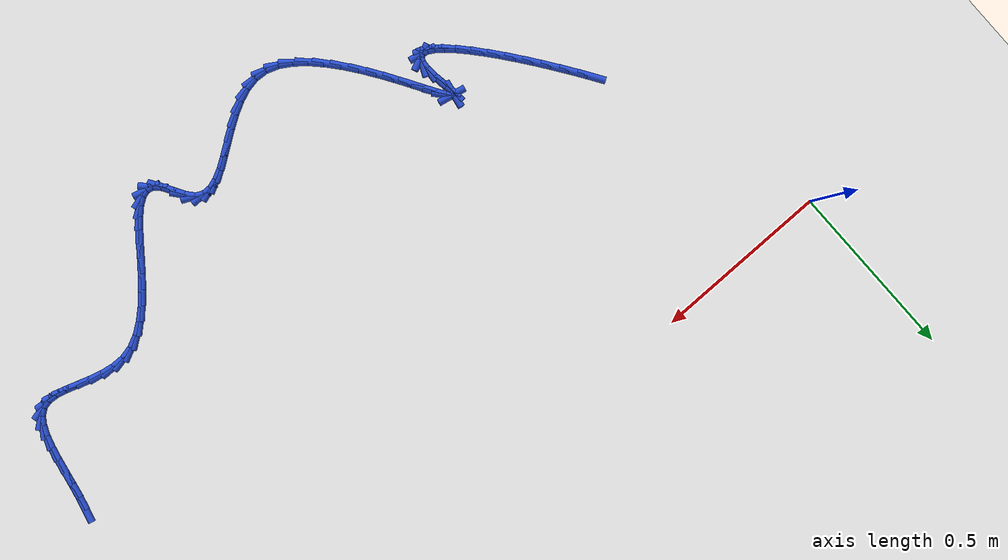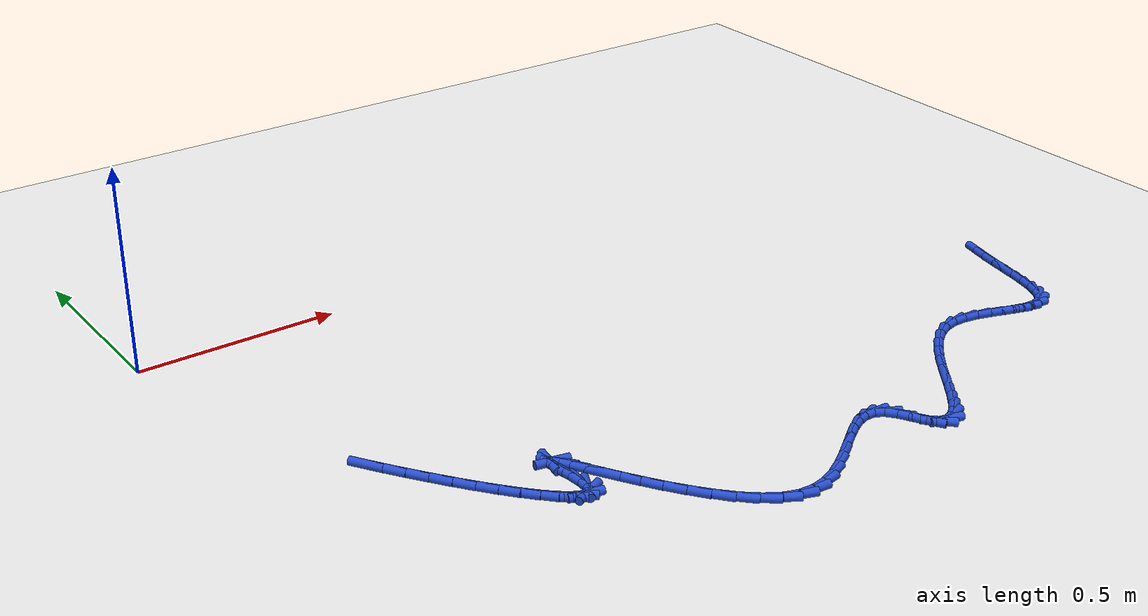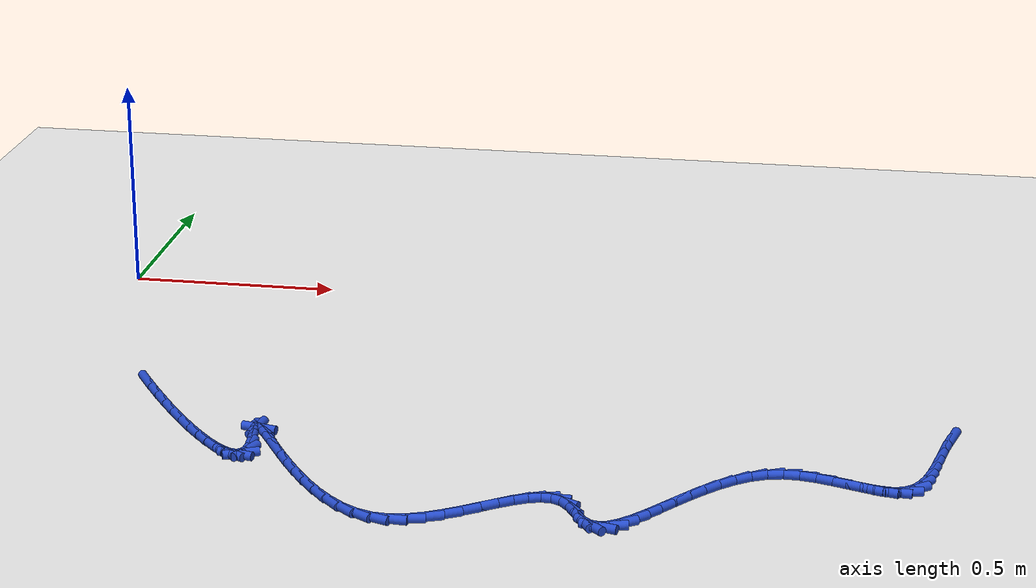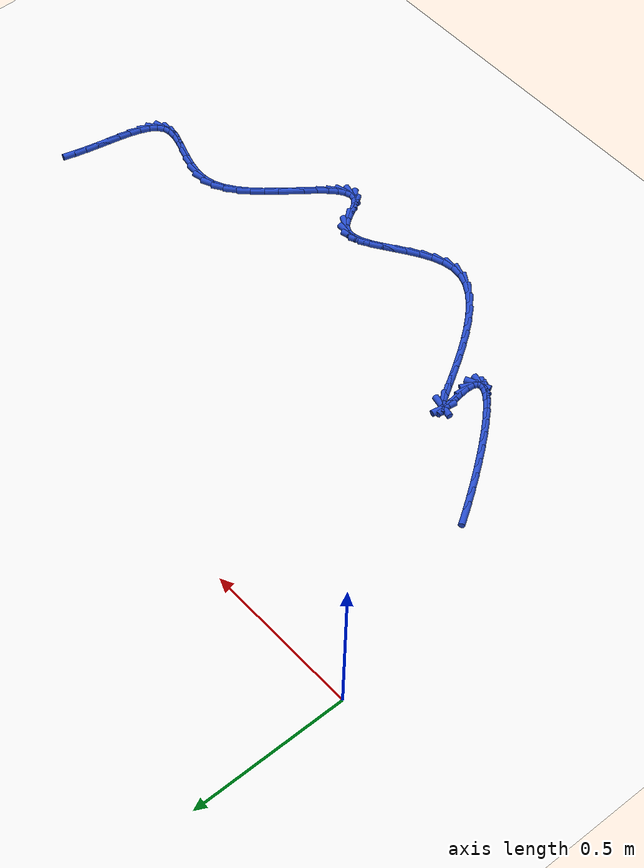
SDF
<sdf version="1.6">
 <world name="default">
  <model name="ground_plane">
   <static>1</static>
   <link name="link">
    <collision name="collision">
     <geometry><plane><normal>0 0 1</normal><size>100 100</size></plane></geometry>
     <surface><friction><ode><mu>100</mu><mu2>50</mu2></ode></friction></surface>
    </collision>
    <visual name="visual">
     <cast_shadows>0</cast_shadows>
     <geometry><plane><normal>0 0 1</normal><size>100 100</size></plane></geometry>
     <material>
      <script><uri>file://media/materials/scripts/gazebo.material</uri><name>Gazebo/WhiteGlow</name></script>
     </material>
    </visual>
   </link>
  </model>
  <model name="line">
   <link name="link_140">
    <pose>2.02241449339849 -0.6710309930264609 0.01 0 1.57 1.319415978468877</pose>
    <collision name="collision">
     <geometry><cylinder><radius>0.01</radius><length>0.08</length></cylinder></geometry>
    </collision>
    <visual name="visual">
     <material>
      <script><name>Gazebo/Blue</name><uri>file://media/materials/scripts/gazebo.material</uri></script>
     </material>
     <geometry><cylinder><radius>0.01</radius><length>0.08</length></cylinder></geometry>
    </visual>
   </link>
   <link name="link_141">
    <pose>2.0132947647723123 -0.7065421867468198 0.01 0 1.57 1.349553911798489</pose>
    <collision name="collision">
     <geometry><cylinder><radius>0.01</radius><length>0.08</length></cylinder></geometry>
    </collision>
    <visual name="visual">
     <material>
      <script><name>Gazebo/Blue</name><uri>file://media/materials/scripts/gazebo.material</uri></script>
     </material>
     <geometry><cylinder><radius>0.01</radius><length>0.08</length></cylinder></geometry>
    </visual>
   </link>
   <link name="link_142">
    <pose>2.0049523692283775 -0.7436319743968415 0.01 0 1.57 1.3719975886626592</pose>
    <collision name="collision">
     <geometry><cylinder><radius>0.01</radius><length>0.08</length></cylinder></geometry>
    </collision>
    <visual name="visual">
     <material>
      <script><name>Gazebo/Blue</name><uri>file://media/materials/scripts/gazebo.material</uri></script>
     </material>
     <geometry><cylinder><radius>0.01</radius><length>0.08</length></cylinder></geometry>
    </visual>
   </link>
   <link name="link_143">
    <pose>1.99726057973033 -0.7818122600142535 0.01 0 1.57 1.3697888168531898</pose>
    <collision name="collision">
     <geometry><cylinder><radius>0.01</radius><length>0.08</length></cylinder></geometry>
    </collision>
    <visual name="visual">
     <material>
      <script><name>Gazebo/Blue</name><uri>file://media/materials/scripts/gazebo.material</uri></script>
     </material>
     <geometry><cylinder><radius>0.01</radius><length>0.08</length></cylinder></geometry>
    </visual>
   </link>
   <link name="link_144">
    <pose>1.9895470251991547 -0.8196684944545303 0.01 0 1.57 1.340531421344994</pose>
    <collision name="collision">
     <geometry><cylinder><radius>0.01</radius><length>0.08</length></cylinder></geometry>
    </collision>
    <visual name="visual">
     <material>
      <script><name>Gazebo/Blue</name><uri>file://media/materials/scripts/gazebo.material</uri></script>
     </material>
     <geometry><cylinder><radius>0.01</radius><length>0.08</length></cylinder></geometry>
    </visual>
   </link>
   <link name="link_145">
    <pose>1.9810970560346075 -0.8557143435494451 0.01 0 1.57 1.277203597134618</pose>
    <collision name="collision">
     <geometry><cylinder><radius>0.01</radius><length>0.08</length></cylinder></geometry>
    </collision>
    <visual name="visual">
     <material>
      <script><name>Gazebo/Blue</name><uri>file://media/materials/scripts/gazebo.material</uri></script>
     </material>
     <geometry><cylinder><radius>0.01</radius><length>0.08</length></cylinder></geometry>
    </visual>
   </link>
   <link name="link_146">
    <pose>1.971196022636446 -0.8884634731307719 0.01 0 1.57 1.1634515530023146</pose>
    <collision name="collision">
     <geometry><cylinder><radius>0.01</radius><length>0.08</length></cylinder></geometry>
    </collision>
    <visual name="visual">
     <material>
      <script><name>Gazebo/Blue</name><uri>file://media/materials/scripts/gazebo.material</uri></script>
     </material>
     <geometry><cylinder><radius>0.01</radius><length>0.08</length></cylinder></geometry>
    </visual>
   </link>
   <link name="link_147">
    <pose>1.9591292754044245 -0.916429549030284 0.01 0 1.57 0.9675507412434617</pose>
    <collision name="collision">
     <geometry><cylinder><radius>0.01</radius><length>0.08</length></cylinder></geometry>
    </collision>
    <visual name="visual">
     <material>
      <script><name>Gazebo/Blue</name><uri>file://media/materials/scripts/gazebo.material</uri></script>
     </material>
     <geometry><cylinder><radius>0.01</radius><length>0.08</length></cylinder></geometry>
    </visual>
   </link>
   <link name="link_148">
    <pose>1.9441821647383013 -0.938126237079754 0.01 0 1.57 0.6446864808762411</pose>
    <collision name="collision">
     <geometry><cylinder><radius>0.01</radius><length>0.08</length></cylinder></geometry>
    </collision>
    <visual name="visual">
     <material>
      <script><name>Gazebo/Blue</name><uri>file://media/materials/scripts/gazebo.material</uri></script>
     </material>
     <geometry><cylinder><radius>0.01</radius><length>0.08</length></cylinder></geometry>
    </visual>
   </link>
   <link name="link_149">
    <pose>1.9256400410378318 -0.9520672031109558 0.01 0 1.57 0.22247842306408347</pose>
    <collision name="collision">
     <geometry><cylinder><radius>0.01</radius><length>0.08</length></cylinder></geometry>
    </collision>
    <visual name="visual">
     <material>
      <script><name>Gazebo/Blue</name><uri>file://media/materials/scripts/gazebo.material</uri></script>
     </material>
     <geometry><cylinder><radius>0.01</radius><length>0.08</length></cylinder></geometry>
    </visual>
   </link>
   <link name="link_150">
    <pose>1.9029513320510516 -0.9571999161005155 0.01 0 1.57 -0.08682194829517074</pose>
    <collision name="collision">
     <geometry><cylinder><radius>0.01</radius><length>0.08</length></cylinder></geometry>
    </collision>
    <visual name="visual">
     <material>
      <script><name>Gazebo/Blue</name><uri>file://media/materials/scripts/gazebo.material</uri></script>
     </material>
     <geometry><cylinder><radius>0.01</radius><length>0.08</length></cylinder></geometry>
    </visual>
   </link>
   <link name="link_151">
    <pose>1.8764755565566344 -0.9548954443692278 0.01 0 1.57 -0.24919029362077516</pose>
    <collision name="collision">
     <geometry><cylinder><radius>0.01</radius><length>0.08</length></cylinder></geometry>
    </collision>
    <visual name="visual">
     <material>
      <script><name>Gazebo/Blue</name><uri>file://media/materials/scripts/gazebo.material</uri></script>
     </material>
     <geometry><cylinder><radius>0.01</radius><length>0.08</length></cylinder></geometry>
    </visual>
   </link>
   <link name="link_152">
    <pose>1.8468884928183473 -0.9473661402093934 0.01 0 1.57 -0.3180040378942925</pose>
    <collision name="collision">
     <geometry><cylinder><radius>0.01</radius><length>0.08</length></cylinder></geometry>
    </collision>
    <visual name="visual">
     <material>
      <script><name>Gazebo/Blue</name><uri>file://media/materials/scripts/gazebo.material</uri></script>
     </material>
     <geometry><cylinder><radius>0.01</radius><length>0.08</length></cylinder></geometry>
    </visual>
   </link>
   <link name="link_153">
    <pose>1.8148662326473435 -0.9368251899828091 0.01 0 1.57 -0.32385258924751653</pose>
    <collision name="collision">
     <geometry><cylinder><radius>0.01</radius><length>0.08</length></cylinder></geometry>
    </collision>
    <visual name="visual">
     <material>
      <script><name>Gazebo/Blue</name><uri>file://media/materials/scripts/gazebo.material</uri></script>
     </material>
     <geometry><cylinder><radius>0.01</radius><length>0.08</length></cylinder></geometry>
    </visual>
   </link>
   <link name="link_154">
    <pose>1.7810848678547735 -0.9254857800512712 0.01 0 1.57 -0.2773296999548653</pose>
    <collision name="collision">
     <geometry><cylinder><radius>0.01</radius><length>0.08</length></cylinder></geometry>
    </collision>
    <visual name="visual">
     <material>
      <script><name>Gazebo/Blue</name><uri>file://media/materials/scripts/gazebo.material</uri></script>
     </material>
     <geometry><cylinder><radius>0.01</radius><length>0.08</length></cylinder></geometry>
    </visual>
   </link>
   <link name="link_155">
    <pose>1.7462204902517908 -0.9155610967765778 0.01 0 1.57 -0.1766628088196213</pose>
    <collision name="collision">
     <geometry><cylinder><radius>0.01</radius><length>0.08</length></cylinder></geometry>
    </collision>
    <visual name="visual">
     <material>
      <script><name>Gazebo/Blue</name><uri>file://media/materials/scripts/gazebo.material</uri></script>
     </material>
     <geometry><cylinder><radius>0.01</radius><length>0.08</length></cylinder></geometry>
    </visual>
   </link>
   <link name="link_156">
    <pose>1.7109491916495485 -0.9092643265205258 0.01 0 1.57 -0.013017641066793886</pose>
    <collision name="collision">
     <geometry><cylinder><radius>0.01</radius><length>0.08</length></cylinder></geometry>
    </collision>
    <visual name="visual">
     <material>
      <script><name>Gazebo/Blue</name><uri>file://media/materials/scripts/gazebo.material</uri></script>
     </material>
     <geometry><cylinder><radius>0.01</radius><length>0.08</length></cylinder></geometry>
    </visual>
   </link>
   <link name="link_157">
    <pose>1.6759470638591991 -0.9088086556449124 0.01 0 1.57 0.21636475274682235</pose>
    <collision name="collision">
     <geometry><cylinder><radius>0.01</radius><length>0.08</length></cylinder></geometry>
    </collision>
    <visual name="visual">
     <material>
      <script><name>Gazebo/Blue</name><uri>file://media/materials/scripts/gazebo.material</uri></script>
     </material>
     <geometry><cylinder><radius>0.01</radius><length>0.08</length></cylinder></geometry>
    </visual>
   </link>
   <link name="link_158">
    <pose>1.641870409643692 -0.9162988908105291 0.01 0 1.57 0.4438774675046493</pose>
    <collision name="collision">
     <geometry><cylinder><radius>0.01</radius><length>0.08</length></cylinder></geometry>
    </collision>
    <visual name="visual">
     <material>
      <script><name>Gazebo/Blue</name><uri>file://media/materials/scripts/gazebo.material</uri></script>
     </material>
     <geometry><cylinder><radius>0.01</radius><length>0.08</length></cylinder></geometry>
    </visual>
   </link>
   <link name="link_159">
    <pose>1.6090246095287724 -0.9319179247611823 0.01 0 1.57 0.613973350497978</pose>
    <collision name="collision">
     <geometry><cylinder><radius>0.01</radius><length>0.08</length></cylinder></geometry>
    </collision>
    <visual name="visual">
     <material>
      <script><name>Gazebo/Blue</name><uri>file://media/materials/scripts/gazebo.material</uri></script>
     </material>
     <geometry><cylinder><radius>0.01</radius><length>0.08</length></cylinder></geometry>
    </visual>
   </link>
   <link name="link_160">
    <pose>1.5774137969608102 -0.9541987948228072 0.01 0 1.57 0.7342470923644175</pose>
    <collision name="collision">
     <geometry><cylinder><radius>0.01</radius><length>0.08</length></cylinder></geometry>
    </collision>
    <visual name="visual">
     <material>
      <script><name>Gazebo/Blue</name><uri>file://media/materials/scripts/gazebo.material</uri></script>
     </material>
     <geometry><cylinder><radius>0.01</radius><length>0.08</length></cylinder></geometry>
    </visual>
   </link>
   <link name="link_161">
    <pose>1.547032323982685 -0.981620968004322 0.01 0 1.57 0.8167025395245603</pose>
    <collision name="collision">
     <geometry><cylinder><radius>0.01</radius><length>0.08</length></cylinder></geometry>
    </collision>
    <visual name="visual">
     <material>
      <script><name>Gazebo/Blue</name><uri>file://media/materials/scripts/gazebo.material</uri></script>
     </material>
     <geometry><cylinder><radius>0.01</radius><length>0.08</length></cylinder></geometry>
    </visual>
   </link>
   <link name="link_162">
    <pose>1.5178745426372755 -1.0126639113146447 0.01 0 1.57 0.8703795422937296</pose>
    <collision name="collision">
     <geometry><cylinder><radius>0.01</radius><length>0.08</length></cylinder></geometry>
    </collision>
    <visual name="visual">
     <material>
      <script><name>Gazebo/Blue</name><uri>file://media/materials/scripts/gazebo.material</uri></script>
     </material>
     <geometry><cylinder><radius>0.01</radius><length>0.08</length></cylinder></geometry>
    </visual>
   </link>
   <link name="link_163">
    <pose>1.4899348049674628 -1.045807091762692 0.01 0 1.57 0.9006096916340974</pose>
    <collision name="collision">
     <geometry><cylinder><radius>0.01</radius><length>0.08</length></cylinder></geometry>
    </collision>
    <visual name="visual">
     <material>
      <script><name>Gazebo/Blue</name><uri>file://media/materials/scripts/gazebo.material</uri></script>
     </material>
     <geometry><cylinder><radius>0.01</radius><length>0.08</length></cylinder></geometry>
    </visual>
   </link>
   <link name="link_164">
    <pose>1.4632074630161256 -1.079529976357383 0.01 0 1.57 0.9093078018831457</pose>
    <collision name="collision">
     <geometry><cylinder><radius>0.01</radius><length>0.08</length></cylinder></geometry>
    </collision>
    <visual name="visual">
     <material>
      <script><name>Gazebo/Blue</name><uri>file://media/materials/scripts/gazebo.material</uri></script>
     </material>
     <geometry><cylinder><radius>0.01</radius><length>0.08</length></cylinder></geometry>
    </visual>
   </link>
   <link name="link_165">
    <pose>1.4376868688261433 -1.1123120321076343 0.01 0 1.57 0.8947909427828948</pose>
    <collision name="collision">
     <geometry><cylinder><radius>0.01</radius><length>0.08</length></cylinder></geometry>
    </collision>
    <visual name="visual">
     <material>
      <script><name>Gazebo/Blue</name><uri>file://media/materials/scripts/gazebo.material</uri></script>
     </material>
     <geometry><cylinder><radius>0.01</radius><length>0.08</length></cylinder></geometry>
    </visual>
   </link>
   <link name="link_166">
    <pose>1.4133673744403954 -1.1426327260223648 0.01 0 1.57 0.8503002466010748</pose>
    <collision name="collision">
     <geometry><cylinder><radius>0.01</radius><length>0.08</length></cylinder></geometry>
    </collision>
    <visual name="visual">
     <material>
      <script><name>Gazebo/Blue</name><uri>file://media/materials/scripts/gazebo.material</uri></script>
     </material>
     <geometry><cylinder><radius>0.01</radius><length>0.08</length></cylinder></geometry>
    </visual>
   </link>
   <link name="link_167">
    <pose>1.3902433319017617 -1.1689715251104922 0.01 0 1.57 0.759735065462096</pose>
    <collision name="collision">
     <geometry><cylinder><radius>0.01</radius><length>0.08</length></cylinder></geometry>
    </collision>
    <visual name="visual">
     <material>
      <script><name>Gazebo/Blue</name><uri>file://media/materials/scripts/gazebo.material</uri></script>
     </material>
     <geometry><cylinder><radius>0.01</radius><length>0.08</length></cylinder></geometry>
    </visual>
   </link>
   <link name="link_168">
    <pose>1.3683090932531219 -1.1898078963809338 0.01 0 1.57 0.5873357589536295</pose>
    <collision name="collision">
     <geometry><cylinder><radius>0.01</radius><length>0.08</length></cylinder></geometry>
    </collision>
    <visual name="visual">
     <material>
      <script><name>Gazebo/Blue</name><uri>file://media/materials/scripts/gazebo.material</uri></script>
     </material>
     <geometry><cylinder><radius>0.01</radius><length>0.08</length></cylinder></geometry>
    </visual>
   </link>
   <link name="link_169">
    <pose>1.3475590105373545 -1.2036213068426078 0.01 0 1.57 0.26302553335978407</pose>
    <collision name="collision">
     <geometry><cylinder><radius>0.01</radius><length>0.08</length></cylinder></geometry>
    </collision>
    <visual name="visual">
     <material>
      <script><name>Gazebo/Blue</name><uri>file://media/materials/scripts/gazebo.material</uri></script>
     </material>
     <geometry><cylinder><radius>0.01</radius><length>0.08</length></cylinder></geometry>
    </visual>
   </link>
   <link name="link_170">
    <pose>1.3279874357973396 -1.2088912235044322 0.01 0 1.57 -0.25489970543971063</pose>
    <collision name="collision">
     <geometry><cylinder><radius>0.01</radius><length>0.08</length></cylinder></geometry>
    </collision>
    <visual name="visual">
     <material>
      <script><name>Gazebo/Blue</name><uri>file://media/materials/scripts/gazebo.material</uri></script>
     </material>
     <geometry><cylinder><radius>0.01</radius><length>0.08</length></cylinder></geometry>
    </visual>
   </link>
   <link name="link_171">
    <pose>1.3095887210759578 -1.2040971133753247 0.01 0 1.57 -0.7599065591446996</pose>
    <collision name="collision">
     <geometry><cylinder><radius>0.01</radius><length>0.08</length></cylinder></geometry>
    </collision>
    <visual name="visual">
     <material>
      <script><name>Gazebo/Blue</name><uri>file://media/materials/scripts/gazebo.material</uri></script>
     </material>
     <geometry><cylinder><radius>0.01</radius><length>0.08</length></cylinder></geometry>
    </visual>
   </link>
   <link name="link_172">
    <pose>1.292356743918052 -1.187722019975486 0.01 0 1.57 -1.023086412354771</pose>
    <collision name="collision">
     <geometry><cylinder><radius>0.01</radius><length>0.08</length></cylinder></geometry>
    </collision>
    <visual name="visual">
     <material>
      <script><name>Gazebo/Blue</name><uri>file://media/materials/scripts/gazebo.material</uri></script>
     </material>
     <geometry><cylinder><radius>0.01</radius><length>0.08</length></cylinder></geometry>
    </visual>
   </link>
   <link name="link_173">
    <pose>1.2759448803917375 -1.1608155040346102 0.01 0 1.57 -1.0482966914931813</pose>
    <collision name="collision">
     <geometry><cylinder><radius>0.01</radius><length>0.08</length></cylinder></geometry>
    </collision>
    <visual name="visual">
     <material>
      <script><name>Gazebo/Blue</name><uri>file://media/materials/scripts/gazebo.material</uri></script>
     </material>
     <geometry><cylinder><radius>0.01</radius><length>0.08</length></cylinder></geometry>
    </visual>
   </link>
   <link name="link_174">
    <pose>1.2590670874046928 -1.1315079632448217 0.01 0 1.57 -0.8743654670493353</pose>
    <collision name="collision">
     <geometry><cylinder><radius>0.01</radius><length>0.08</length></cylinder></geometry>
    </collision>
    <visual name="visual">
     <material>
      <script><name>Gazebo/Blue</name><uri>file://media/materials/scripts/gazebo.material</uri></script>
     </material>
     <geometry><cylinder><radius>0.01</radius><length>0.08</length></cylinder></geometry>
    </visual>
   </link>
   <link name="link_175">
    <pose>1.2402899193396775 -1.1090527523511222 0.01 0 1.57 -0.46348601411249796</pose>
    <collision name="collision">
     <geometry><cylinder><radius>0.01</radius><length>0.08</length></cylinder></geometry>
    </collision>
    <visual name="visual">
     <material>
      <script><name>Gazebo/Blue</name><uri>file://media/materials/scripts/gazebo.material</uri></script>
     </material>
     <geometry><cylinder><radius>0.01</radius><length>0.08</length></cylinder></geometry>
    </visual>
   </link>
   <link name="link_176">
    <pose>1.2188386543800653 -1.0983314525397418 0.01 0 1.57 -0.017183362866566274</pose>
    <collision name="collision">
     <geometry><cylinder><radius>0.01</radius><length>0.08</length></cylinder></geometry>
    </collision>
    <visual name="visual">
     <material>
      <script><name>Gazebo/Blue</name><uri>file://media/materials/scripts/gazebo.material</uri></script>
     </material>
     <geometry><cylinder><radius>0.01</radius><length>0.08</length></cylinder></geometry>
    </visual>
   </link>
   <link name="link_177">
    <pose>1.1948887029938269 -1.097919871324723 0.01 0 1.57 0.29576627354935064</pose>
    <collision name="collision">
     <geometry><cylinder><radius>0.01</radius><length>0.08</length></cylinder></geometry>
    </collision>
    <visual name="visual">
     <material>
      <script><name>Gazebo/Blue</name><uri>file://media/materials/scripts/gazebo.material</uri></script>
     </material>
     <geometry><cylinder><radius>0.01</radius><length>0.08</length></cylinder></geometry>
    </visual>
   </link>
   <link name="link_178">
    <pose>1.1686894491090123 -1.1059028741644121 0.01 0 1.57 0.4738889117430393</pose>
    <collision name="collision">
     <geometry><cylinder><radius>0.01</radius><length>0.08</length></cylinder></geometry>
    </collision>
    <visual name="visual">
     <material>
      <script><name>Gazebo/Blue</name><uri>file://media/materials/scripts/gazebo.material</uri></script>
     </material>
     <geometry><cylinder><radius>0.01</radius><length>0.08</length></cylinder></geometry>
    </visual>
   </link>
   <link name="link_179">
    <pose>1.1404902766536693 -1.1203653265171554 0.01 0 1.57 0.5659650952664808</pose>
    <collision name="collision">
     <geometry><cylinder><radius>0.01</radius><length>0.08</length></cylinder></geometry>
    </collision>
    <visual name="visual">
     <material>
      <script><name>Gazebo/Blue</name><uri>file://media/materials/scripts/gazebo.material</uri></script>
     </material>
     <geometry><cylinder><radius>0.01</radius><length>0.08</length></cylinder></geometry>
    </visual>
   </link>
   <link name="link_180">
    <pose>1.1105405695558452 -1.1393920938413 0.01 0 1.57 0.6034411636069879</pose>
    <collision name="collision">
     <geometry><cylinder><radius>0.01</radius><length>0.08</length></cylinder></geometry>
    </collision>
    <visual name="visual">
     <material>
      <script><name>Gazebo/Blue</name><uri>file://media/materials/scripts/gazebo.material</uri></script>
     </material>
     <geometry><cylinder><radius>0.01</radius><length>0.08</length></cylinder></geometry>
    </visual>
   </link>
   <link name="link_181">
    <pose>1.0790897117435885 -1.1610680415951926 0.01 0 1.57 0.6007687121715943</pose>
    <collision name="collision">
     <geometry><cylinder><radius>0.01</radius><length>0.08</length></cylinder></geometry>
    </collision>
    <visual name="visual">
     <material>
      <script><name>Gazebo/Blue</name><uri>file://media/materials/scripts/gazebo.material</uri></script>
     </material>
     <geometry><cylinder><radius>0.01</radius><length>0.08</length></cylinder></geometry>
    </visual>
   </link>
   <link name="link_182">
    <pose>1.0463870871449477 -1.1834780352371796 0.01 0 1.57 0.5620752358989735</pose>
    <collision name="collision">
     <geometry><cylinder><radius>0.01</radius><length>0.08</length></cylinder></geometry>
    </collision>
    <visual name="visual">
     <material>
      <script><name>Gazebo/Blue</name><uri>file://media/materials/scripts/gazebo.material</uri></script>
     </material>
     <geometry><cylinder><radius>0.01</radius><length>0.08</length></cylinder></geometry>
    </visual>
   </link>
   <link name="link_183">
    <pose>1.0126820796879699 -1.204706940225608 0.01 0 1.57 0.4844072259803812</pose>
    <collision name="collision">
     <geometry><cylinder><radius>0.01</radius><length>0.08</length></cylinder></geometry>
    </collision>
    <visual name="visual">
     <material>
      <script><name>Gazebo/Blue</name><uri>file://media/materials/scripts/gazebo.material</uri></script>
     </material>
     <geometry><cylinder><radius>0.01</radius><length>0.08</length></cylinder></geometry>
    </visual>
   </link>
   <link name="link_184">
    <pose>0.9782240733007036 -1.2228396220188247 0.01 0 1.57 0.35903936299778727</pose>
    <collision name="collision">
     <geometry><cylinder><radius>0.01</radius><length>0.08</length></cylinder></geometry>
    </collision>
    <visual name="visual">
     <material>
      <script><name>Gazebo/Blue</name><uri>file://media/materials/scripts/gazebo.material</uri></script>
     </material>
     <geometry><cylinder><radius>0.01</radius><length>0.08</length></cylinder></geometry>
    </visual>
   </link>
   <link name="link_185">
    <pose>0.9432624519111962 -1.2359609460751764 0.01 0 1.57 0.17412879687253893</pose>
    <collision name="collision">
     <geometry><cylinder><radius>0.01</radius><length>0.08</length></cylinder></geometry>
    </collision>
    <visual name="visual">
     <material>
      <script><name>Gazebo/Blue</name><uri>file://media/materials/scripts/gazebo.material</uri></script>
     </material>
     <geometry><cylinder><radius>0.01</radius><length>0.08</length></cylinder></geometry>
    </visual>
   </link>
   <link name="link_186">
    <pose>0.9080465994474973 -1.2421557778530092 0.01 0 1.57 -0.07494852447191017</pose>
    <collision name="collision">
     <geometry><cylinder><radius>0.01</radius><length>0.08</length></cylinder></geometry>
    </collision>
    <visual name="visual">
     <material>
      <script><name>Gazebo/Blue</name><uri>file://media/materials/scripts/gazebo.material</uri></script>
     </material>
     <geometry><cylinder><radius>0.01</radius><length>0.08</length></cylinder></geometry>
    </visual>
   </link>
   <link name="link_187">
    <pose>0.8728259194062168 -1.2395110860048706 0.01 0 1.57 -0.3435947440291913</pose>
    <collision name="collision">
     <geometry><cylinder><radius>0.01</radius><length>0.08</length></cylinder></geometry>
    </collision>
    <visual name="visual">
     <material>
      <script><name>Gazebo/Blue</name><uri>file://media/materials/scripts/gazebo.material</uri></script>
     </material>
     <geometry><cylinder><radius>0.01</radius><length>0.08</length></cylinder></geometry>
    </visual>
   </link>
   <link name="link_188">
    <pose>0.8378580608211965 -1.2270000548201478 0.01 0 1.57 -0.5507298884604229</pose>
    <collision name="collision">
     <geometry><cylinder><radius>0.01</radius><length>0.08</length></cylinder></geometry>
    </collision>
    <visual name="visual">
     <material>
      <script><name>Gazebo/Blue</name><uri>file://media/materials/scripts/gazebo.material</uri></script>
     </material>
     <geometry><cylinder><radius>0.01</radius><length>0.08</length></cylinder></geometry>
    </visual>
   </link>
   <link name="link_189">
    <pose>0.8034216672643122 -1.20585232409507 0.01 0 1.57 -0.6979200958449476</pose>
    <collision name="collision">
     <geometry><cylinder><radius>0.01</radius><length>0.08</length></cylinder></geometry>
    </collision>
    <visual name="visual">
     <material>
      <script><name>Gazebo/Blue</name><uri>file://media/materials/scripts/gazebo.material</uri></script>
     </material>
     <geometry><cylinder><radius>0.01</radius><length>0.08</length></cylinder></geometry>
    </visual>
   </link>
   <link name="link_190">
    <pose>0.7697986748069862 -1.1776514056054355 0.01 0 1.57 -0.8026618470846066</pose>
    <collision name="collision">
     <geometry><cylinder><radius>0.01</radius><length>0.08</length></cylinder></geometry>
    </collision>
    <visual name="visual">
     <material>
      <script><name>Gazebo/Blue</name><uri>file://media/materials/scripts/gazebo.material</uri></script>
     </material>
     <geometry><cylinder><radius>0.01</radius><length>0.08</length></cylinder></geometry>
    </visual>
   </link>
   <link name="link_191">
    <pose>0.737271019520641 -1.1439808111270442 0.01 0 1.57 -0.8783711365498321</pose>
    <collision name="collision">
     <geometry><cylinder><radius>0.01</radius><length>0.08</length></cylinder></geometry>
    </collision>
    <visual name="visual">
     <material>
      <script><name>Gazebo/Blue</name><uri>file://media/materials/scripts/gazebo.material</uri></script>
     </material>
     <geometry><cylinder><radius>0.01</radius><length>0.08</length></cylinder></geometry>
    </visual>
   </link>
   <link name="link_192">
    <pose>0.7061206374766978 -1.106424052435693 0.01 0 1.57 -0.9338036771776909</pose>
    <collision name="collision">
     <geometry><cylinder><radius>0.01</radius><length>0.08</length></cylinder></geometry>
    </collision>
    <visual name="visual">
     <material>
      <script><name>Gazebo/Blue</name><uri>file://media/materials/scripts/gazebo.material</uri></script>
     </material>
     <geometry><cylinder><radius>0.01</radius><length>0.08</length></cylinder></geometry>
    </visual>
   </link>
   <link name="link_193">
    <pose>0.6766294647465813 -1.0665646413071836 0.01 0 1.57 -0.9743511808289484</pose>
    <collision name="collision">
     <geometry><cylinder><radius>0.01</radius><length>0.08</length></cylinder></geometry>
    </collision>
    <visual name="visual">
     <material>
      <script><name>Gazebo/Blue</name><uri>file://media/materials/scripts/gazebo.material</uri></script>
     </material>
     <geometry><cylinder><radius>0.01</radius><length>0.08</length></cylinder></geometry>
    </visual>
   </link>
   <link name="link_194">
    <pose>0.6490794374017127 -1.025986089517314 0.01 0 1.57 -1.0030947977903846</pose>
    <collision name="collision">
     <geometry><cylinder><radius>0.01</radius><length>0.08</length></cylinder></geometry>
    </collision>
    <visual name="visual">
     <material>
      <script><name>Gazebo/Blue</name><uri>file://media/materials/scripts/gazebo.material</uri></script>
     </material>
     <geometry><cylinder><radius>0.01</radius><length>0.08</length></cylinder></geometry>
    </visual>
   </link>
   <link name="link_195">
    <pose>0.6237524915135142 -0.9862719088418824 0.01 0 1.57 -1.0213081066684986</pose>
    <collision name="collision">
     <geometry><cylinder><radius>0.01</radius><length>0.08</length></cylinder></geometry>
    </collision>
    <visual name="visual">
     <material>
      <script><name>Gazebo/Blue</name><uri>file://media/materials/scripts/gazebo.material</uri></script>
     </material>
     <geometry><cylinder><radius>0.01</radius><length>0.08</length></cylinder></geometry>
    </visual>
   </link>
   <link name="link_196">
    <pose>0.6009305631534088 -0.9490056110566889 0.01 0 1.57 -1.028299024983316</pose>
    <collision name="collision">
     <geometry><cylinder><radius>0.01</radius><length>0.08</length></cylinder></geometry>
    </collision>
    <visual name="visual">
     <material>
      <script><name>Gazebo/Blue</name><uri>file://media/materials/scripts/gazebo.material</uri></script>
     </material>
     <geometry><cylinder><radius>0.01</radius><length>0.08</length></cylinder></geometry>
    </visual>
   </link>
   <link name="link_197">
    <pose>0.5808955883928182 -0.9157707079375316 0.01 0 1.57 -1.0199515228658103</pose>
    <collision name="collision">
     <geometry><cylinder><radius>0.01</radius><length>0.08</length></cylinder></geometry>
    </collision>
    <visual name="visual">
     <material>
      <script><name>Gazebo/Blue</name><uri>file://media/materials/scripts/gazebo.material</uri></script>
     </material>
     <geometry><cylinder><radius>0.01</radius><length>0.08</length></cylinder></geometry>
    </visual>
   </link>
   <link name="link_198">
    <pose>0.5639295033031649 -0.8881507112602094 0.01 0 1.57 -0.9827641044555464</pose>
    <collision name="collision">
     <geometry><cylinder><radius>0.01</radius><length>0.08</length></cylinder></geometry>
    </collision>
    <visual name="visual">
     <material>
      <script><name>Gazebo/Blue</name><uri>file://media/materials/scripts/gazebo.material</uri></script>
     </material>
     <geometry><cylinder><radius>0.01</radius><length>0.08</length></cylinder></geometry>
    </visual>
   </link>
   <link name="link_199">
    <pose>0.5503142439558719 -0.8677291328005223 0.01 0 1.57 -0.8618900007022484</pose>
    <collision name="collision">
     <geometry><cylinder><radius>0.01</radius><length>0.08</length></cylinder></geometry>
    </collision>
    <visual name="visual">
     <material>
      <script><name>Gazebo/Blue</name><uri>file://media/materials/scripts/gazebo.material</uri></script>
     </material>
     <geometry><cylinder><radius>0.01</radius><length>0.08</length></cylinder></geometry>
    </visual>
   </link>
   <link name="link_200">
    <pose>0.5403317464223609 -0.8560894843342679 0.01 0 1.57 -0.2069872649010067</pose>
    <collision name="collision">
     <geometry><cylinder><radius>0.01</radius><length>0.08</length></cylinder></geometry>
    </collision>
    <visual name="visual">
     <material>
      <script><name>Gazebo/Blue</name><uri>file://media/materials/scripts/gazebo.material</uri></script>
     </material>
     <geometry><cylinder><radius>0.01</radius><length>0.08</length></cylinder></geometry>
    </visual>
   </link>
   <link name="link_201">
    <pose>0.5342639467740549 -0.8548152776372465 0.01 0 1.57 1.3972702625166782</pose>
    <collision name="collision">
     <geometry><cylinder><radius>0.01</radius><length>0.08</length></cylinder></geometry>
    </collision>
    <visual name="visual">
     <material>
      <script><name>Gazebo/Blue</name><uri>file://media/materials/scripts/gazebo.material</uri></script>
     </material>
     <geometry><cylinder><radius>0.01</radius><length>0.08</length></cylinder></geometry>
    </visual>
   </link>
   <link name="link_202">
    <pose>0.532392781082376 -0.8654900244852566 0.01 0 1.57 -1.465672903385145</pose>
    <collision name="collision">
     <geometry><cylinder><radius>0.01</radius><length>0.08</length></cylinder></geometry>
    </collision>
    <visual name="visual">
     <material>
      <script><name>Gazebo/Blue</name><uri>file://media/materials/scripts/gazebo.material</uri></script>
     </material>
     <geometry><cylinder><radius>0.01</radius><length>0.08</length></cylinder></geometry>
    </visual>
   </link>
   <link name="link_203">
    <pose>0.5349261026219714 -0.8894997334438431 0.01 0 1.57 -1.420731873557001</pose>
    <collision name="collision">
     <geometry><cylinder><radius>0.01</radius><length>0.08</length></cylinder></geometry>
    </collision>
    <visual name="visual">
     <material>
      <script><name>Gazebo/Blue</name><uri>file://media/materials/scripts/gazebo.material</uri></script>
     </material>
     <geometry><cylinder><radius>0.01</radius><length>0.08</length></cylinder></geometry>
    </visual>
   </link>
   <link name="link_204">
    <pose>0.5399113741438706 -0.9224708564420672 0.01 0 1.57 -1.4727913152748295</pose>
    <collision name="collision">
     <geometry><cylinder><radius>0.01</radius><length>0.08</length></cylinder></geometry>
    </collision>
    <visual name="visual">
     <material>
      <script><name>Gazebo/Blue</name><uri>file://media/materials/scripts/gazebo.material</uri></script>
     </material>
     <geometry><cylinder><radius>0.01</radius><length>0.08</length></cylinder></geometry>
    </visual>
   </link>
   <link name="link_205">
    <pose>0.5429669505769048 -0.9535487288546336 0.01 0 1.57 1.4940776300481269</pose>
    <collision name="collision">
     <geometry><cylinder><radius>0.01</radius><length>0.08</length></cylinder></geometry>
    </collision>
    <visual name="visual">
     <material>
      <script><name>Gazebo/Blue</name><uri>file://media/materials/scripts/gazebo.material</uri></script>
     </material>
     <geometry><cylinder><radius>0.01</radius><length>0.08</length></cylinder></geometry>
    </visual>
   </link>
   <link name="link_206">
    <pose>0.5412714949349255 -0.9756049949325263 0.01 0 1.57 1.1183830868867135</pose>
    <collision name="collision">
     <geometry><cylinder><radius>0.01</radius><length>0.08</length></cylinder></geometry>
    </collision>
    <visual name="visual">
     <material>
      <script><name>Gazebo/Blue</name><uri>file://media/materials/scripts/gazebo.material</uri></script>
     </material>
     <geometry><cylinder><radius>0.01</radius><length>0.08</length></cylinder></geometry>
    </visual>
   </link>
   <link name="link_207">
    <pose>0.534949923709945 -0.9886114092479594 0.01 0 1.57 0.4151435690794936</pose>
    <collision name="collision">
     <geometry><cylinder><radius>0.01</radius><length>0.08</length></cylinder></geometry>
    </collision>
    <visual name="visual">
     <material>
      <script><name>Gazebo/Blue</name><uri>file://media/materials/scripts/gazebo.material</uri></script>
     </material>
     <geometry><cylinder><radius>0.01</radius><length>0.08</length></cylinder></geometry>
    </visual>
   </link>
   <link name="link_208">
    <pose>0.5244225009751085 -0.9932514778991803 0.01 0 1.57 -0.20946936935473123</pose>
    <collision name="collision">
     <geometry><cylinder><radius>0.01</radius><length>0.08</length></cylinder></geometry>
    </collision>
    <visual name="visual">
     <material>
      <script><name>Gazebo/Blue</name><uri>file://media/materials/scripts/gazebo.material</uri></script>
     </material>
     <geometry><cylinder><radius>0.01</radius><length>0.08</length></cylinder></geometry>
    </visual>
   </link>
   <link name="link_209">
    <pose>0.5101094908035628 -0.9902087069844367 0.01 0 1.57 -0.5165923633491697</pose>
    <collision name="collision">
     <geometry><cylinder><radius>0.01</radius><length>0.08</length></cylinder></geometry>
    </collision>
    <visual name="visual">
     <material>
      <script><name>Gazebo/Blue</name><uri>file://media/materials/scripts/gazebo.material</uri></script>
     </material>
     <geometry><cylinder><radius>0.01</radius><length>0.08</length></cylinder></geometry>
    </visual>
   </link>
   <link name="link_210">
    <pose>0.49243115726845366 -0.9801666026019757 0.01 0 1.57 -0.6705646508189932</pose>
    <collision name="collision">
     <geometry><cylinder><radius>0.01</radius><length>0.08</length></cylinder></geometry>
    </collision>
    <visual name="visual">
     <material>
      <script><name>Gazebo/Blue</name><uri>file://media/materials/scripts/gazebo.material</uri></script>
     </material>
     <geometry><cylinder><radius>0.01</radius><length>0.08</length></cylinder></geometry>
    </visual>
   </link>
   <link name="link_211">
    <pose>0.471807764442927 -0.9638086708500448 0.01 0 1.57 -0.7597508195829759</pose>
    <collision name="collision">
     <geometry><cylinder><radius>0.01</radius><length>0.08</length></cylinder></geometry>
    </collision>
    <visual name="visual">
     <material>
      <script><name>Gazebo/Blue</name><uri>file://media/materials/scripts/gazebo.material</uri></script>
     </material>
     <geometry><cylinder><radius>0.01</radius><length>0.08</length></cylinder></geometry>
    </visual>
   </link>
   <link name="link_212">
    <pose>0.44865957640012866 -0.9418184178268915 0.01 0 1.57 -0.8176975465951795</pose>
    <collision name="collision">
     <geometry><cylinder><radius>0.01</radius><length>0.08</length></cylinder></geometry>
    </collision>
    <visual name="visual">
     <material>
      <script><name>Gazebo/Blue</name><uri>file://media/materials/scripts/gazebo.material</uri></script>
     </material>
     <geometry><cylinder><radius>0.01</radius><length>0.08</length></cylinder></geometry>
    </visual>
   </link>
   <link name="link_213">
    <pose>0.423406857213205 -0.9148793496307629 0.01 0 1.57 -0.8586636061803282</pose>
    <collision name="collision">
     <geometry><cylinder><radius>0.01</radius><length>0.08</length></cylinder></geometry>
    </collision>
    <visual name="visual">
     <material>
      <script><name>Gazebo/Blue</name><uri>file://media/materials/scripts/gazebo.material</uri></script>
     </material>
     <geometry><cylinder><radius>0.01</radius><length>0.08</length></cylinder></geometry>
    </visual>
   </link>
   <link name="link_214">
    <pose>0.3964698709553015 -0.8836749723599062 0.01 0 1.57 -0.889567860860914</pose>
    <collision name="collision">
     <geometry><cylinder><radius>0.01</radius><length>0.08</length></cylinder></geometry>
    </collision>
    <visual name="visual">
     <material>
      <script><name>Gazebo/Blue</name><uri>file://media/materials/scripts/gazebo.material</uri></script>
     </material>
     <geometry><cylinder><radius>0.01</radius><length>0.08</length></cylinder></geometry>
    </visual>
   </link>
   <link name="link_215">
    <pose>0.3682688816995636 -0.8488887921125683 0.01 0 1.57 -0.9141566381019842</pose>
    <collision name="collision">
     <geometry><cylinder><radius>0.01</radius><length>0.08</length></cylinder></geometry>
    </collision>
    <visual name="visual">
     <material>
      <script><name>Gazebo/Blue</name><uri>file://media/materials/scripts/gazebo.material</uri></script>
     </material>
     <geometry><cylinder><radius>0.01</radius><length>0.08</length></cylinder></geometry>
    </visual>
   </link>
   <link name="link_216">
    <pose>0.3392241535191387 -0.8112043149869977 0.01 0 1.57 -0.9346538723559943</pose>
    <collision name="collision">
     <geometry><cylinder><radius>0.01</radius><length>0.08</length></cylinder></geometry>
    </collision>
    <visual name="visual">
     <material>
      <script><name>Gazebo/Blue</name><uri>file://media/materials/scripts/gazebo.material</uri></script>
     </material>
     <geometry><cylinder><radius>0.01</radius><length>0.08</length></cylinder></geometry>
    </visual>
   </link>
   <link name="link_217">
    <pose>0.3097559504871722 -0.7713050470814417 0.01 0 1.57 -0.952496822190541</pose>
    <collision name="collision">
     <geometry><cylinder><radius>0.01</radius><length>0.08</length></cylinder></geometry>
    </collision>
    <visual name="visual">
     <material>
      <script><name>Gazebo/Blue</name><uri>file://media/materials/scripts/gazebo.material</uri></script>
     </material>
     <geometry><cylinder><radius>0.01</radius><length>0.08</length></cylinder></geometry>
    </visual>
   </link>
   <link name="link_218">
    <pose>0.2802845366768099 -0.729874494494147 0.01 0 1.57 -0.9687016159522458</pose>
    <collision name="collision">
     <geometry><cylinder><radius>0.01</radius><length>0.08</length></cylinder></geometry>
    </collision>
    <visual name="visual">
     <material>
      <script><name>Gazebo/Blue</name><uri>file://media/materials/scripts/gazebo.material</uri></script>
     </material>
     <geometry><cylinder><radius>0.01</radius><length>0.08</length></cylinder></geometry>
    </visual>
   </link>
   <link name="link_219">
    <pose>0.2512301761611979 -0.6875961633233613 0.01 0 1.57 -0.9840675332470799</pose>
    <collision name="collision">
     <geometry><cylinder><radius>0.01</radius><length>0.08</length></cylinder></geometry>
    </collision>
    <visual name="visual">
     <material>
      <script><name>Gazebo/Blue</name><uri>file://media/materials/scripts/gazebo.material</uri></script>
     </material>
     <geometry><cylinder><radius>0.01</radius><length>0.08</length></cylinder></geometry>
    </visual>
   </link>
   <link name="link_220">
    <pose>0.2230131330134821 -0.6451535596673317 0.01 0 1.57 -0.9993116205262943</pose>
    <collision name="collision">
     <geometry><cylinder><radius>0.01</radius><length>0.08</length></cylinder></geometry>
    </collision>
    <visual name="visual">
     <material>
      <script><name>Gazebo/Blue</name><uri>file://media/materials/scripts/gazebo.material</uri></script>
     </material>
     <geometry><cylinder><radius>0.01</radius><length>0.08</length></cylinder></geometry>
    </visual>
   </link>
  </model>
 </world>
</sdf>
